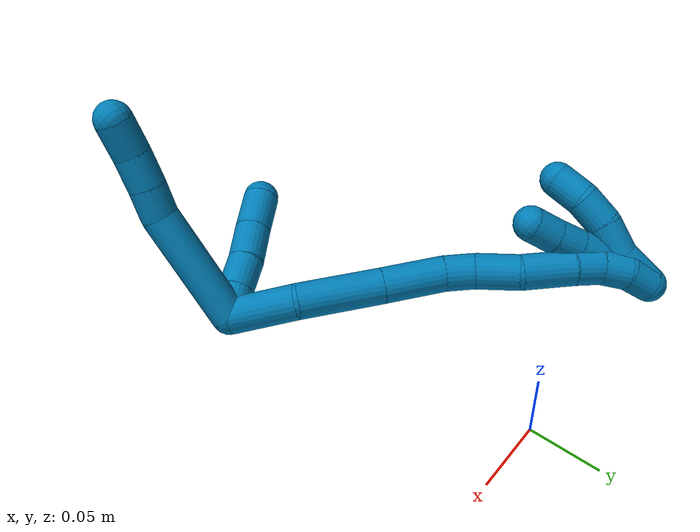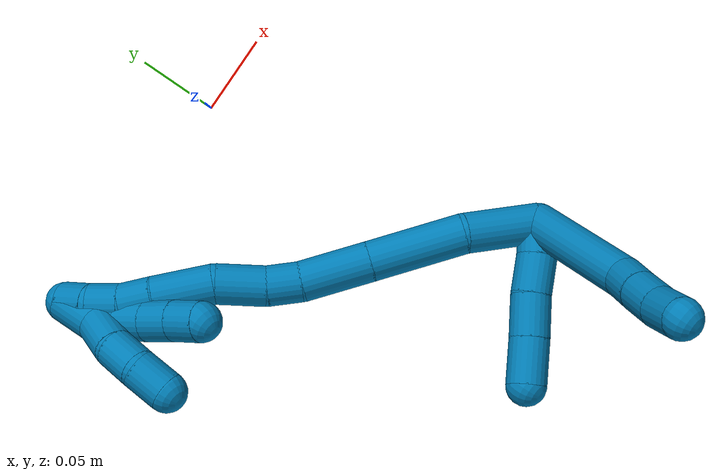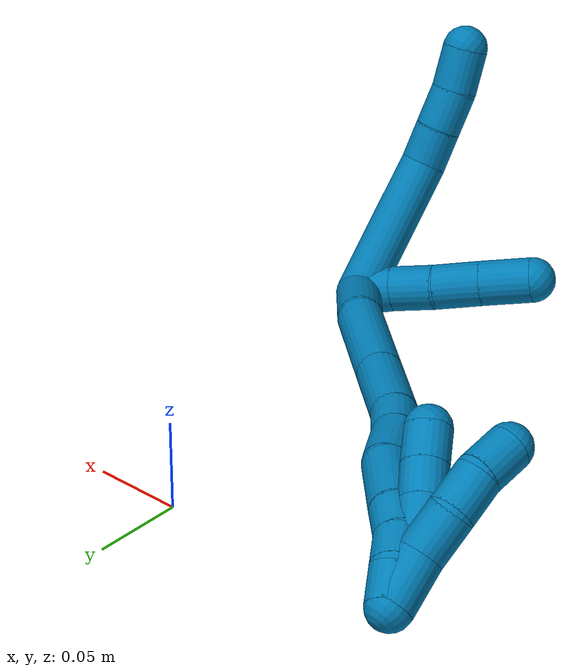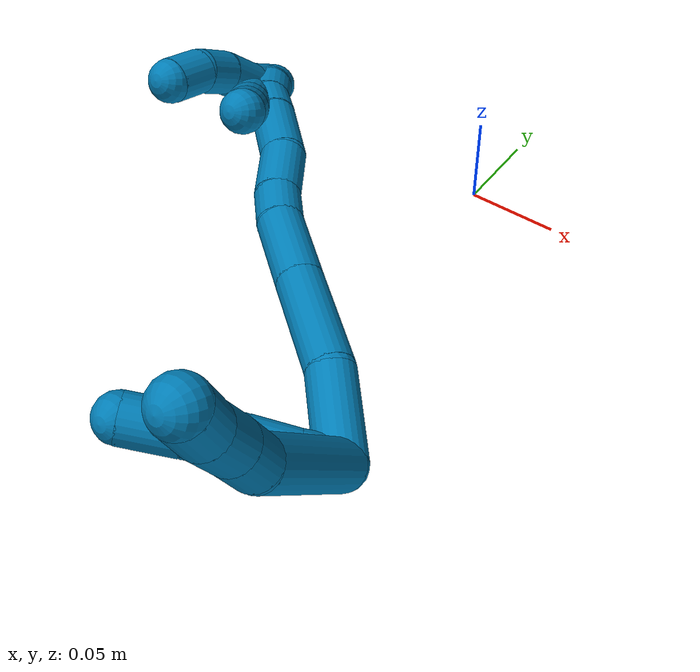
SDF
<sdf version="1.7">
 <world name="default">
  <model name="9">
   <static>0</static>
   <link name="9">
    <collision name="collision-cylinder-e_1_2_8">
     <pose>0.012779 0.006189 0.038067 -0.161163 0.319973 -0.026061</pose>
     <geometry><cylinder><radius>0.0125</radius><length>0.081258</length></cylinder></geometry>
     <surface>
      <friction><ode><mu>1.16</mu><mu2>1.16</mu2><slip1>0</slip1><slip2>0</slip2></ode></friction>
      <contact><ode><kp>1e+06</kp><kd>1</kd><max_vel>0</max_vel><min_depth>0.001</min_depth></ode></contact>
     </surface>
    </collision>
    <visual name="visual-cylinder-e_1_2_8">
     <pose>0.012779 0.006189 0.038067 -0.161163 0.319973 -0.026061</pose>
     <geometry><cylinder><radius>0.0125</radius><length>0.081258</length></cylinder></geometry>
     <material><ambient>0 0.490196 0.709804 1</ambient></material>
    </visual>
    <collision name="collision-cylinder-e_2_8_9">
     <pose>0.030576 0.01617 0.084862 -0.409879 0.485183 -0.102784</pose>
     <geometry><cylinder><radius>0.0125</radius><length>0.021516</length></cylinder></geometry>
     <surface>
      <friction><ode><mu>1.16</mu><mu2>1.16</mu2><slip1>0</slip1><slip2>0</slip2></ode></friction>
      <contact><ode><kp>1e+06</kp><kd>1</kd><max_vel>0</max_vel><min_depth>0.001</min_depth></ode></contact>
     </surface>
    </collision>
    <visual name="visual-cylinder-e_2_8_9">
     <pose>0.030576 0.01617 0.084862 -0.409879 0.485183 -0.102784</pose>
     <geometry><cylinder><radius>0.0125</radius><length>0.021516</length></cylinder></geometry>
     <material><ambient>0 0.490196 0.709804 1</ambient></material>
    </visual>
    <collision name="collision-cylinder-e_3_9_10">
     <pose>0.040757 0.023559 0.103232 -0.357108 0.465082 -0.085431</pose>
     <geometry><cylinder><radius>0.0125</radius><length>0.023028</length></cylinder></geometry>
     <surface>
      <friction><ode><mu>1.16</mu><mu2>1.16</mu2><slip1>0</slip1><slip2>0</slip2></ode></friction>
      <contact><ode><kp>1e+06</kp><kd>1</kd><max_vel>0</max_vel><min_depth>0.001</min_depth></ode></contact>
     </surface>
    </collision>
    <visual name="visual-cylinder-e_3_9_10">
     <pose>0.040757 0.023559 0.103232 -0.357108 0.465082 -0.085431</pose>
     <geometry><cylinder><radius>0.0125</radius><length>0.023028</length></cylinder></geometry>
     <material><ambient>0 0.490196 0.709804 1</ambient></material>
    </visual>
    <collision name="collision-cylinder-e_4_10_6">
     <pose>0.052747 0.030314 0.122351 -0.321627 0.599441 -0.100174</pose>
     <geometry><cylinder><radius>0.0125</radius><length>0.024198</length></cylinder></geometry>
     <surface>
      <friction><ode><mu>1.16</mu><mu2>1.16</mu2><slip1>0</slip1><slip2>0</slip2></ode></friction>
      <contact><ode><kp>1e+06</kp><kd>1</kd><max_vel>0</max_vel><min_depth>0.001</min_depth></ode></contact>
     </surface>
    </collision>
    <visual name="visual-cylinder-e_4_10_6">
     <pose>0.052747 0.030314 0.122351 -0.321627 0.599441 -0.100174</pose>
     <geometry><cylinder><radius>0.0125</radius><length>0.024198</length></cylinder></geometry>
     <material><ambient>0 0.490196 0.709804 1</ambient></material>
    </visual>
    <collision name="collision-cylinder-e_1_2_11">
     <pose>-0.004354 0.00713 0.005922 -0.877739 -0.439135 0.208746</pose>
     <geometry><cylinder><radius>0.0125</radius><length>0.02048</length></cylinder></geometry>
     <surface>
      <friction><ode><mu>1.16</mu><mu2>1.16</mu2><slip1>0</slip1><slip2>0</slip2></ode></friction>
      <contact><ode><kp>1e+06</kp><kd>1</kd><max_vel>0</max_vel><min_depth>0.001</min_depth></ode></contact>
     </surface>
    </collision>
    <visual name="visual-cylinder-e_1_2_11">
     <pose>-0.004354 0.00713 0.005922 -0.877739 -0.439135 0.208746</pose>
     <geometry><cylinder><radius>0.0125</radius><length>0.02048</length></cylinder></geometry>
     <material><ambient>0 0.490196 0.709804 1</ambient></material>
    </visual>
    <collision name="collision-cylinder-e_2_11_12">
     <pose>-0.014008 0.023441 0.017727 -1.00086 -0.45249 0.250443</pose>
     <geometry><cylinder><radius>0.0125</radius><length>0.024248</length></cylinder></geometry>
     <surface>
      <friction><ode><mu>1.16</mu><mu2>1.16</mu2><slip1>0</slip1><slip2>0</slip2></ode></friction>
      <contact><ode><kp>1e+06</kp><kd>1</kd><max_vel>0</max_vel><min_depth>0.001</min_depth></ode></contact>
     </surface>
    </collision>
    <visual name="visual-cylinder-e_2_11_12">
     <pose>-0.014008 0.023441 0.017727 -1.00086 -0.45249 0.250443</pose>
     <geometry><cylinder><radius>0.0125</radius><length>0.024248</length></cylinder></geometry>
     <material><ambient>0 0.490196 0.709804 1</ambient></material>
    </visual>
    <collision name="collision-cylinder-e_3_12_13">
     <pose>-0.02543 0.04165 0.031144 -0.875438 -0.479973 0.228046</pose>
     <geometry><cylinder><radius>0.0125</radius><length>0.026515</length></cylinder></geometry>
     <surface>
      <friction><ode><mu>1.16</mu><mu2>1.16</mu2><slip1>0</slip1><slip2>0</slip2></ode></friction>
      <contact><ode><kp>1e+06</kp><kd>1</kd><max_vel>0</max_vel><min_depth>0.001</min_depth></ode></contact>
     </surface>
    </collision>
    <visual name="visual-cylinder-e_3_12_13">
     <pose>-0.02543 0.04165 0.031144 -0.875438 -0.479973 0.228046</pose>
     <geometry><cylinder><radius>0.0125</radius><length>0.026515</length></cylinder></geometry>
     <material><ambient>0 0.490196 0.709804 1</ambient></material>
    </visual>
    <collision name="collision-cylinder-e_4_13_5">
     <pose>-0.038101 0.060805 0.046508 -0.912556 -0.472929 0.235455</pose>
     <geometry><cylinder><radius>0.0125</radius><length>0.028757</length></cylinder></geometry>
     <surface>
      <friction><ode><mu>1.16</mu><mu2>1.16</mu2><slip1>0</slip1><slip2>0</slip2></ode></friction>
      <contact><ode><kp>1e+06</kp><kd>1</kd><max_vel>0</max_vel><min_depth>0.001</min_depth></ode></contact>
     </surface>
    </collision>
    <visual name="visual-cylinder-e_4_13_5">
     <pose>-0.038101 0.060805 0.046508 -0.912556 -0.472929 0.235455</pose>
     <geometry><cylinder><radius>0.0125</radius><length>0.028757</length></cylinder></geometry>
     <material><ambient>0 0.490196 0.709804 1</ambient></material>
    </visual>
    <collision name="collision-cylinder-e_1_2_14">
     <pose>0.003537 0.020068 -0.01196 -2.10826 0.15028 -0.263474</pose>
     <geometry><cylinder><radius>0.0125</radius><length>0.047255</length></cylinder></geometry>
     <surface>
      <friction><ode><mu>1.16</mu><mu2>1.16</mu2><slip1>0</slip1><slip2>0</slip2></ode></friction>
      <contact><ode><kp>1e+06</kp><kd>1</kd><max_vel>0</max_vel><min_depth>0.001</min_depth></ode></contact>
     </surface>
    </collision>
    <visual name="visual-cylinder-e_1_2_14">
     <pose>0.003537 0.020068 -0.01196 -2.10826 0.15028 -0.263474</pose>
     <geometry><cylinder><radius>0.0125</radius><length>0.047255</length></cylinder></geometry>
     <material><ambient>0 0.490196 0.709804 1</ambient></material>
    </visual>
    <collision name="collision-cylinder-e_2_14_15">
     <pose>0.003734 0.06514 -0.039338 -2.12334 -0.113228 0.202364</pose>
     <geometry><cylinder><radius>0.0125</radius><length>0.059132</length></cylinder></geometry>
     <surface>
      <friction><ode><mu>1.16</mu><mu2>1.16</mu2><slip1>0</slip1><slip2>0</slip2></ode></friction>
      <contact><ode><kp>1e+06</kp><kd>1</kd><max_vel>0</max_vel><min_depth>0.001</min_depth></ode></contact>
     </surface>
    </collision>
    <visual name="visual-cylinder-e_2_14_15">
     <pose>0.003734 0.06514 -0.039338 -2.12334 -0.113228 0.202364</pose>
     <geometry><cylinder><radius>0.0125</radius><length>0.059132</length></cylinder></geometry>
     <material><ambient>0 0.490196 0.709804 1</ambient></material>
    </visual>
    <collision name="collision-cylinder-e_3_15_16">
     <pose>-0.001636 0.108657 -0.065905 -2.11287 -0.093631 0.165432</pose>
     <geometry><cylinder><radius>0.0125</radius><length>0.043408</length></cylinder></geometry>
     <surface>
      <friction><ode><mu>1.16</mu><mu2>1.16</mu2><slip1>0</slip1><slip2>0</slip2></ode></friction>
      <contact><ode><kp>1e+06</kp><kd>1</kd><max_vel>0</max_vel><min_depth>0.001</min_depth></ode></contact>
     </surface>
    </collision>
    <visual name="visual-cylinder-e_3_15_16">
     <pose>-0.001636 0.108657 -0.065905 -2.11287 -0.093631 0.165432</pose>
     <geometry><cylinder><radius>0.0125</radius><length>0.043408</length></cylinder></geometry>
     <material><ambient>0 0.490196 0.709804 1</ambient></material>
    </visual>
    <collision name="collision-cylinder-e_4_16_17">
     <pose>-0.003599 0.135461 -0.083539 -2.23448 0.006241 -0.012804</pose>
     <geometry><cylinder><radius>0.0125</radius><length>0.021057</length></cylinder></geometry>
     <surface>
      <friction><ode><mu>1.16</mu><mu2>1.16</mu2><slip1>0</slip1><slip2>0</slip2></ode></friction>
      <contact><ode><kp>1e+06</kp><kd>1</kd><max_vel>0</max_vel><min_depth>0.001</min_depth></ode></contact>
     </surface>
    </collision>
    <visual name="visual-cylinder-e_4_16_17">
     <pose>-0.003599 0.135461 -0.083539 -2.23448 0.006241 -0.012804</pose>
     <geometry><cylinder><radius>0.0125</radius><length>0.021057</length></cylinder></geometry>
     <material><ambient>0 0.490196 0.709804 1</ambient></material>
    </visual>
    <collision name="collision-cylinder-e_5_17_18">
     <pose>-0.001494 0.154641 -0.100913 -2.35631 0.131716 -0.31585</pose>
     <geometry><cylinder><radius>0.0125</radius><length>0.031062</length></cylinder></geometry>
     <surface>
      <friction><ode><mu>1.16</mu><mu2>1.16</mu2><slip1>0</slip1><slip2>0</slip2></ode></friction>
      <contact><ode><kp>1e+06</kp><kd>1</kd><max_vel>0</max_vel><min_depth>0.001</min_depth></ode></contact>
     </surface>
    </collision>
    <visual name="visual-cylinder-e_5_17_18">
     <pose>-0.001494 0.154641 -0.100913 -2.35631 0.131716 -0.31585</pose>
     <geometry><cylinder><radius>0.0125</radius><length>0.031062</length></cylinder></geometry>
     <material><ambient>0 0.490196 0.709804 1</ambient></material>
    </visual>
    <collision name="collision-cylinder-e_6_18_19">
     <pose>-0.001304 0.180482 -0.123171 -2.22079 -0.098171 0.197463</pose>
     <geometry><cylinder><radius>0.0125</radius><length>0.037756</length></cylinder></geometry>
     <surface>
      <friction><ode><mu>1.16</mu><mu2>1.16</mu2><slip1>0</slip1><slip2>0</slip2></ode></friction>
      <contact><ode><kp>1e+06</kp><kd>1</kd><max_vel>0</max_vel><min_depth>0.001</min_depth></ode></contact>
     </surface>
    </collision>
    <visual name="visual-cylinder-e_6_18_19">
     <pose>-0.001304 0.180482 -0.123171 -2.22079 -0.098171 0.197463</pose>
     <geometry><cylinder><radius>0.0125</radius><length>0.037756</length></cylinder></geometry>
     <material><ambient>0 0.490196 0.709804 1</ambient></material>
    </visual>
    <collision name="collision-cylinder-e_7_19_20">
     <pose>-0.004998 0.203131 -0.140847 -2.25752 -0.183258 0.383535</pose>
     <geometry><cylinder><radius>0.0125</radius><length>0.020233</length></cylinder></geometry>
     <surface>
      <friction><ode><mu>1.16</mu><mu2>1.16</mu2><slip1>0</slip1><slip2>0</slip2></ode></friction>
      <contact><ode><kp>1e+06</kp><kd>1</kd><max_vel>0</max_vel><min_depth>0.001</min_depth></ode></contact>
     </surface>
    </collision>
    <visual name="visual-cylinder-e_7_19_20">
     <pose>-0.004998 0.203131 -0.140847 -2.25752 -0.183258 0.383535</pose>
     <geometry><cylinder><radius>0.0125</radius><length>0.020233</length></cylinder></geometry>
     <material><ambient>0 0.490196 0.709804 1</ambient></material>
    </visual>
    <collision name="collision-cylinder-e_8_20_21">
     <pose>-0.008125 0.216795 -0.155081 -2.49594 -0.128588 0.38027</pose>
     <geometry><cylinder><radius>0.0125</radius><length>0.020015</length></cylinder></geometry>
     <surface>
      <friction><ode><mu>1.16</mu><mu2>1.16</mu2><slip1>0</slip1><slip2>0</slip2></ode></friction>
      <contact><ode><kp>1e+06</kp><kd>1</kd><max_vel>0</max_vel><min_depth>0.001</min_depth></ode></contact>
     </surface>
    </collision>
    <visual name="visual-cylinder-e_8_20_21">
     <pose>-0.008125 0.216795 -0.155081 -2.49594 -0.128588 0.38027</pose>
     <geometry><cylinder><radius>0.0125</radius><length>0.020015</length></cylinder></geometry>
     <material><ambient>0 0.490196 0.709804 1</ambient></material>
    </visual>
    <collision name="collision-cylinder-e_9_21_1">
     <pose>-0.012935 0.226392 -0.171682 -2.74578 -0.358879 1.47065</pose>
     <geometry><cylinder><radius>0.0125</radius><length>0.020081</length></cylinder></geometry>
     <surface>
      <friction><ode><mu>1.16</mu><mu2>1.16</mu2><slip1>0</slip1><slip2>0</slip2></ode></friction>
      <contact><ode><kp>1e+06</kp><kd>1</kd><max_vel>0</max_vel><min_depth>0.001</min_depth></ode></contact>
     </surface>
    </collision>
    <visual name="visual-cylinder-e_9_21_1">
     <pose>-0.012935 0.226392 -0.171682 -2.74578 -0.358879 1.47065</pose>
     <geometry><cylinder><radius>0.0125</radius><length>0.020081</length></cylinder></geometry>
     <material><ambient>0 0.490196 0.709804 1</ambient></material>
    </visual>
    <collision name="collision-cylinder-e_1_1_22">
     <pose>-0.014703 0.229094 -0.165834 0.063473 0.12024 0.003822</pose>
     <geometry><cylinder><radius>0.0125</radius><length>0.029316</length></cylinder></geometry>
     <surface>
      <friction><ode><mu>1.16</mu><mu2>1.16</mu2><slip1>0</slip1><slip2>0</slip2></ode></friction>
      <contact><ode><kp>1e+06</kp><kd>1</kd><max_vel>0</max_vel><min_depth>0.001</min_depth></ode></contact>
     </surface>
    </collision>
    <visual name="visual-cylinder-e_1_1_22">
     <pose>-0.014703 0.229094 -0.165834 0.063473 0.12024 0.003822</pose>
     <geometry><cylinder><radius>0.0125</radius><length>0.029316</length></cylinder></geometry>
     <material><ambient>0 0.490196 0.709804 1</ambient></material>
    </visual>
    <collision name="collision-cylinder-e_2_22_23">
     <pose>-0.010858 0.231164 -0.139163 -0.241599 0.165257 -0.020106</pose>
     <geometry><cylinder><radius>0.0125</radius><length>0.025368</length></cylinder></geometry>
     <surface>
      <friction><ode><mu>1.16</mu><mu2>1.16</mu2><slip1>0</slip1><slip2>0</slip2></ode></friction>
      <contact><ode><kp>1e+06</kp><kd>1</kd><max_vel>0</max_vel><min_depth>0.001</min_depth></ode></contact>
     </surface>
    </collision>
    <visual name="visual-cylinder-e_2_22_23">
     <pose>-0.010858 0.231164 -0.139163 -0.241599 0.165257 -0.020106</pose>
     <geometry><cylinder><radius>0.0125</radius><length>0.025368</length></cylinder></geometry>
     <material><ambient>0 0.490196 0.709804 1</ambient></material>
    </visual>
    <collision name="collision-cylinder-e_3_23_24">
     <pose>-0.008098 0.234392 -0.115641 -0.020661 0.059135 -0.000611</pose>
     <geometry><cylinder><radius>0.0125</radius><length>0.022794</length></cylinder></geometry>
     <surface>
      <friction><ode><mu>1.16</mu><mu2>1.16</mu2><slip1>0</slip1><slip2>0</slip2></ode></friction>
      <contact><ode><kp>1e+06</kp><kd>1</kd><max_vel>0</max_vel><min_depth>0.001</min_depth></ode></contact>
     </surface>
    </collision>
    <visual name="visual-cylinder-e_3_23_24">
     <pose>-0.008098 0.234392 -0.115641 -0.020661 0.059135 -0.000611</pose>
     <geometry><cylinder><radius>0.0125</radius><length>0.022794</length></cylinder></geometry>
     <material><ambient>0 0.490196 0.709804 1</ambient></material>
    </visual>
    <collision name="collision-cylinder-e_4_24_4">
     <pose>-0.009821 0.233467 -0.093324 0.105619 -0.214413 -0.011377</pose>
     <geometry><cylinder><radius>0.0125</radius><length>0.022522</length></cylinder></geometry>
     <surface>
      <friction><ode><mu>1.16</mu><mu2>1.16</mu2><slip1>0</slip1><slip2>0</slip2></ode></friction>
      <contact><ode><kp>1e+06</kp><kd>1</kd><max_vel>0</max_vel><min_depth>0.001</min_depth></ode></contact>
     </surface>
    </collision>
    <visual name="visual-cylinder-e_4_24_4">
     <pose>-0.009821 0.233467 -0.093324 0.105619 -0.214413 -0.011377</pose>
     <geometry><cylinder><radius>0.0125</radius><length>0.022522</length></cylinder></geometry>
     <material><ambient>0 0.490196 0.709804 1</ambient></material>
    </visual>
    <collision name="collision-cylinder-e_1_1_25">
     <pose>-0.015172 0.227143 -0.170865 0.29395 0.129277 0.019165</pose>
     <geometry><cylinder><radius>0.0125</radius><length>0.02</length></cylinder></geometry>
     <surface>
      <friction><ode><mu>1.16</mu><mu2>1.16</mu2><slip1>0</slip1><slip2>0</slip2></ode></friction>
      <contact><ode><kp>1e+06</kp><kd>1</kd><max_vel>0</max_vel><min_depth>0.001</min_depth></ode></contact>
     </surface>
    </collision>
    <visual name="visual-cylinder-e_1_1_25">
     <pose>-0.015172 0.227143 -0.170865 0.29395 0.129277 0.019165</pose>
     <geometry><cylinder><radius>0.0125</radius><length>0.02</length></cylinder></geometry>
     <material><ambient>0 0.490196 0.709804 1</ambient></material>
    </visual>
    <collision name="collision-cylinder-e_2_25_26">
     <pose>-0.013379 0.220825 -0.152 0.352194 0.050368 0.008964</pose>
     <geometry><cylinder><radius>0.0125</radius><length>0.02</length></cylinder></geometry>
     <surface>
      <friction><ode><mu>1.16</mu><mu2>1.16</mu2><slip1>0</slip1><slip2>0</slip2></ode></friction>
      <contact><ode><kp>1e+06</kp><kd>1</kd><max_vel>0</max_vel><min_depth>0.001</min_depth></ode></contact>
     </surface>
    </collision>
    <visual name="visual-cylinder-e_2_25_26">
     <pose>-0.013379 0.220825 -0.152 0.352194 0.050368 0.008964</pose>
     <geometry><cylinder><radius>0.0125</radius><length>0.02</length></cylinder></geometry>
     <material><ambient>0 0.490196 0.709804 1</ambient></material>
    </visual>
    <collision name="collision-cylinder-e_3_26_27">
     <pose>-0.009744 0.21301 -0.134194 0.47814 0.318572 0.07827</pose>
     <geometry><cylinder><radius>0.0125</radius><length>0.02</length></cylinder></geometry>
     <surface>
      <friction><ode><mu>1.16</mu><mu2>1.16</mu2><slip1>0</slip1><slip2>0</slip2></ode></friction>
      <contact><ode><kp>1e+06</kp><kd>1</kd><max_vel>0</max_vel><min_depth>0.001</min_depth></ode></contact>
     </surface>
    </collision>
    <visual name="visual-cylinder-e_3_26_27">
     <pose>-0.009744 0.21301 -0.134194 0.47814 0.318572 0.07827</pose>
     <geometry><cylinder><radius>0.0125</radius><length>0.02</length></cylinder></geometry>
     <material><ambient>0 0.490196 0.709804 1</ambient></material>
    </visual>
    <collision name="collision-cylinder-e_4_27_28">
     <pose>-0.002978 0.204374 -0.11748 0.475656 0.371943 0.091156</pose>
     <geometry><cylinder><radius>0.0125</radius><length>0.02</length></cylinder></geometry>
     <surface>
      <friction><ode><mu>1.16</mu><mu2>1.16</mu2><slip1>0</slip1><slip2>0</slip2></ode></friction>
      <contact><ode><kp>1e+06</kp><kd>1</kd><max_vel>0</max_vel><min_depth>0.001</min_depth></ode></contact>
     </surface>
    </collision>
    <visual name="visual-cylinder-e_4_27_28">
     <pose>-0.002978 0.204374 -0.11748 0.475656 0.371943 0.091156</pose>
     <geometry><cylinder><radius>0.0125</radius><length>0.02</length></cylinder></geometry>
     <material><ambient>0 0.490196 0.709804 1</ambient></material>
    </visual>
    <collision name="collision-cylinder-e_5_28_3">
     <pose>0.004283 0.196305 -0.10069 0.420349 0.371065 0.080036</pose>
     <geometry><cylinder><radius>0.0125</radius><length>0.02</length></cylinder></geometry>
     <surface>
      <friction><ode><mu>1.16</mu><mu2>1.16</mu2><slip1>0</slip1><slip2>0</slip2></ode></friction>
      <contact><ode><kp>1e+06</kp><kd>1</kd><max_vel>0</max_vel><min_depth>0.001</min_depth></ode></contact>
     </surface>
    </collision>
    <visual name="visual-cylinder-e_5_28_3">
     <pose>0.004283 0.196305 -0.10069 0.420349 0.371065 0.080036</pose>
     <geometry><cylinder><radius>0.0125</radius><length>0.02</length></cylinder></geometry>
     <material><ambient>0 0.490196 0.709804 1</ambient></material>
    </visual>
    <collision name="collision-sphere-3">
     <pose>0.007909 0.192502 -0.092181 0 -0 0</pose>
     <geometry><sphere><radius>0.0125</radius></sphere></geometry>
     <surface>
      <friction><ode><mu>1.16</mu><mu2>1.16</mu2><slip1>0</slip1><slip2>0</slip2></ode></friction>
      <contact><ode><kp>1e+06</kp><kd>1</kd><max_vel>0</max_vel><min_depth>0.001</min_depth></ode></contact>
     </surface>
    </collision>
    <visual name="visual-sphere-3">
     <pose>0.007909 0.192502 -0.092181 0 -0 0</pose>
     <geometry><sphere><radius>0.0125</radius></sphere></geometry>
     <material><ambient>0 0.490196 0.709804 1</ambient></material>
    </visual>
    <collision name="collision-sphere-28">
     <pose>0.000657 0.200108 -0.109198 0 -0 0</pose>
     <geometry><sphere><radius>0.0125</radius></sphere></geometry>
     <surface>
      <friction><ode><mu>1.16</mu><mu2>1.16</mu2><slip1>0</slip1><slip2>0</slip2></ode></friction>
      <contact><ode><kp>1e+06</kp><kd>1</kd><max_vel>0</max_vel><min_depth>0.001</min_depth></ode></contact>
     </surface>
    </collision>
    <visual name="visual-sphere-28">
     <pose>0.000657 0.200108 -0.109198 0 -0 0</pose>
     <geometry><sphere><radius>0.0125</radius></sphere></geometry>
     <material><ambient>0 0.490196 0.709804 1</ambient></material>
    </visual>
    <collision name="collision-sphere-27">
     <pose>-0.006612 0.20864 -0.125762 0 -0 0</pose>
     <geometry><sphere><radius>0.0125</radius></sphere></geometry>
     <surface>
      <friction><ode><mu>1.16</mu><mu2>1.16</mu2><slip1>0</slip1><slip2>0</slip2></ode></friction>
      <contact><ode><kp>1e+06</kp><kd>1</kd><max_vel>0</max_vel><min_depth>0.001</min_depth></ode></contact>
     </surface>
    </collision>
    <visual name="visual-sphere-27">
     <pose>-0.006612 0.20864 -0.125762 0 -0 0</pose>
     <geometry><sphere><radius>0.0125</radius></sphere></geometry>
     <material><ambient>0 0.490196 0.709804 1</ambient></material>
    </visual>
    <collision name="collision-sphere-26">
     <pose>-0.012876 0.21738 -0.142625 0 -0 0</pose>
     <geometry><sphere><radius>0.0125</radius></sphere></geometry>
     <surface>
      <friction><ode><mu>1.16</mu><mu2>1.16</mu2><slip1>0</slip1><slip2>0</slip2></ode></friction>
      <contact><ode><kp>1e+06</kp><kd>1</kd><max_vel>0</max_vel><min_depth>0.001</min_depth></ode></contact>
     </surface>
    </collision>
    <visual name="visual-sphere-26">
     <pose>-0.012876 0.21738 -0.142625 0 -0 0</pose>
     <geometry><sphere><radius>0.0125</radius></sphere></geometry>
     <material><ambient>0 0.490196 0.709804 1</ambient></material>
    </visual>
    <collision name="collision-sphere-25">
     <pose>-0.013883 0.22427 -0.161374 0 -0 0</pose>
     <geometry><sphere><radius>0.0125</radius></sphere></geometry>
     <surface>
      <friction><ode><mu>1.16</mu><mu2>1.16</mu2><slip1>0</slip1><slip2>0</slip2></ode></friction>
      <contact><ode><kp>1e+06</kp><kd>1</kd><max_vel>0</max_vel><min_depth>0.001</min_depth></ode></contact>
     </surface>
    </collision>
    <visual name="visual-sphere-25">
     <pose>-0.013883 0.22427 -0.161374 0 -0 0</pose>
     <geometry><sphere><radius>0.0125</radius></sphere></geometry>
     <material><ambient>0 0.490196 0.709804 1</ambient></material>
    </visual>
    <collision name="collision-sphere-4">
     <pose>-0.012217 0.232307 -0.082382 0 -0 0</pose>
     <geometry><sphere><radius>0.0125</radius></sphere></geometry>
     <surface>
      <friction><ode><mu>1.16</mu><mu2>1.16</mu2><slip1>0</slip1><slip2>0</slip2></ode></friction>
      <contact><ode><kp>1e+06</kp><kd>1</kd><max_vel>0</max_vel><min_depth>0.001</min_depth></ode></contact>
     </surface>
    </collision>
    <visual name="visual-sphere-4">
     <pose>-0.012217 0.232307 -0.082382 0 -0 0</pose>
     <geometry><sphere><radius>0.0125</radius></sphere></geometry>
     <material><ambient>0 0.490196 0.709804 1</ambient></material>
    </visual>
    <collision name="collision-sphere-24">
     <pose>-0.007425 0.234627 -0.104266 0 -0 0</pose>
     <geometry><sphere><radius>0.0125</radius></sphere></geometry>
     <surface>
      <friction><ode><mu>1.16</mu><mu2>1.16</mu2><slip1>0</slip1><slip2>0</slip2></ode></friction>
      <contact><ode><kp>1e+06</kp><kd>1</kd><max_vel>0</max_vel><min_depth>0.001</min_depth></ode></contact>
     </surface>
    </collision>
    <visual name="visual-sphere-24">
     <pose>-0.007425 0.234627 -0.104266 0 -0 0</pose>
     <geometry><sphere><radius>0.0125</radius></sphere></geometry>
     <material><ambient>0 0.490196 0.709804 1</ambient></material>
    </visual>
    <collision name="collision-sphere-23">
     <pose>-0.008772 0.234157 -0.127015 0 -0 0</pose>
     <geometry><sphere><radius>0.0125</radius></sphere></geometry>
     <surface>
      <friction><ode><mu>1.16</mu><mu2>1.16</mu2><slip1>0</slip1><slip2>0</slip2></ode></friction>
      <contact><ode><kp>1e+06</kp><kd>1</kd><max_vel>0</max_vel><min_depth>0.001</min_depth></ode></contact>
     </surface>
    </collision>
    <visual name="visual-sphere-23">
     <pose>-0.008772 0.234157 -0.127015 0 -0 0</pose>
     <geometry><sphere><radius>0.0125</radius></sphere></geometry>
     <material><ambient>0 0.490196 0.709804 1</ambient></material>
    </visual>
    <collision name="collision-sphere-22">
     <pose>-0.012945 0.228171 -0.151311 0 -0 0</pose>
     <geometry><sphere><radius>0.0125</radius></sphere></geometry>
     <surface>
      <friction><ode><mu>1.16</mu><mu2>1.16</mu2><slip1>0</slip1><slip2>0</slip2></ode></friction>
      <contact><ode><kp>1e+06</kp><kd>1</kd><max_vel>0</max_vel><min_depth>0.001</min_depth></ode></contact>
     </surface>
    </collision>
    <visual name="visual-sphere-22">
     <pose>-0.012945 0.228171 -0.151311 0 -0 0</pose>
     <geometry><sphere><radius>0.0125</radius></sphere></geometry>
     <material><ambient>0 0.490196 0.709804 1</ambient></material>
    </visual>
    <collision name="collision-sphere-1">
     <pose>-0.016461 0.230017 -0.180356 0 -0 0</pose>
     <geometry><sphere><radius>0.0125</radius></sphere></geometry>
     <surface>
      <friction><ode><mu>1.16</mu><mu2>1.16</mu2><slip1>0</slip1><slip2>0</slip2></ode></friction>
      <contact><ode><kp>1e+06</kp><kd>1</kd><max_vel>0</max_vel><min_depth>0.001</min_depth></ode></contact>
     </surface>
    </collision>
    <visual name="visual-sphere-1">
     <pose>-0.016461 0.230017 -0.180356 0 -0 0</pose>
     <geometry><sphere><radius>0.0125</radius></sphere></geometry>
     <material><ambient>0 0.490196 0.709804 1</ambient></material>
    </visual>
    <collision name="collision-sphere-21">
     <pose>-0.009408 0.222767 -0.163008 0 -0 0</pose>
     <geometry><sphere><radius>0.0125</radius></sphere></geometry>
     <surface>
      <friction><ode><mu>1.16</mu><mu2>1.16</mu2><slip1>0</slip1><slip2>0</slip2></ode></friction>
      <contact><ode><kp>1e+06</kp><kd>1</kd><max_vel>0</max_vel><min_depth>0.001</min_depth></ode></contact>
     </surface>
    </collision>
    <visual name="visual-sphere-21">
     <pose>-0.009408 0.222767 -0.163008 0 -0 0</pose>
     <geometry><sphere><radius>0.0125</radius></sphere></geometry>
     <material><ambient>0 0.490196 0.709804 1</ambient></material>
    </visual>
    <collision name="collision-sphere-11">
     <pose>-0.008707 0.014261 0.011843 0 -0 0</pose>
     <geometry><sphere><radius>0.0125</radius></sphere></geometry>
     <surface>
      <friction><ode><mu>1.16</mu><mu2>1.16</mu2><slip1>0</slip1><slip2>0</slip2></ode></friction>
      <contact><ode><kp>1e+06</kp><kd>1</kd><max_vel>0</max_vel><min_depth>0.001</min_depth></ode></contact>
     </surface>
    </collision>
    <visual name="visual-sphere-11">
     <pose>-0.008707 0.014261 0.011843 0 -0 0</pose>
     <geometry><sphere><radius>0.0125</radius></sphere></geometry>
     <material><ambient>0 0.490196 0.709804 1</ambient></material>
    </visual>
    <collision name="collision-sphere-6">
     <pose>0.059573 0.033472 0.131829 0 -0 0</pose>
     <geometry><sphere><radius>0.0125</radius></sphere></geometry>
     <surface>
      <friction><ode><mu>1.16</mu><mu2>1.16</mu2><slip1>0</slip1><slip2>0</slip2></ode></friction>
      <contact><ode><kp>1e+06</kp><kd>1</kd><max_vel>0</max_vel><min_depth>0.001</min_depth></ode></contact>
     </surface>
    </collision>
    <visual name="visual-sphere-6">
     <pose>0.059573 0.033472 0.131829 0 -0 0</pose>
     <geometry><sphere><radius>0.0125</radius></sphere></geometry>
     <material><ambient>0 0.490196 0.709804 1</ambient></material>
    </visual>
    <collision name="collision-sphere-10">
     <pose>0.045921 0.027157 0.112874 0 -0 0</pose>
     <geometry><sphere><radius>0.0125</radius></sphere></geometry>
     <surface>
      <friction><ode><mu>1.16</mu><mu2>1.16</mu2><slip1>0</slip1><slip2>0</slip2></ode></friction>
      <contact><ode><kp>1e+06</kp><kd>1</kd><max_vel>0</max_vel><min_depth>0.001</min_depth></ode></contact>
     </surface>
    </collision>
    <visual name="visual-sphere-10">
     <pose>0.045921 0.027157 0.112874 0 -0 0</pose>
     <geometry><sphere><radius>0.0125</radius></sphere></geometry>
     <material><ambient>0 0.490196 0.709804 1</ambient></material>
    </visual>
    <collision name="collision-sphere-9">
     <pose>0.035593 0.019962 0.09359 0 -0 0</pose>
     <geometry><sphere><radius>0.0125</radius></sphere></geometry>
     <surface>
      <friction><ode><mu>1.16</mu><mu2>1.16</mu2><slip1>0</slip1><slip2>0</slip2></ode></friction>
      <contact><ode><kp>1e+06</kp><kd>1</kd><max_vel>0</max_vel><min_depth>0.001</min_depth></ode></contact>
     </surface>
    </collision>
    <visual name="visual-sphere-9">
     <pose>0.035593 0.019962 0.09359 0 -0 0</pose>
     <geometry><sphere><radius>0.0125</radius></sphere></geometry>
     <material><ambient>0 0.490196 0.709804 1</ambient></material>
    </visual>
    <collision name="collision-sphere-2">
     <geometry><sphere><radius>0.0125</radius></sphere></geometry>
     <surface>
      <friction><ode><mu>1.16</mu><mu2>1.16</mu2><slip1>0</slip1><slip2>0</slip2></ode></friction>
      <contact><ode><kp>1e+06</kp><kd>1</kd><max_vel>0</max_vel><min_depth>0.001</min_depth></ode></contact>
     </surface>
    </collision>
    <visual name="visual-sphere-2">
     <geometry><sphere><radius>0.0125</radius></sphere></geometry>
     <material><ambient>0 0.490196 0.709804 1</ambient></material>
    </visual>
    <collision name="collision-sphere-19">
     <pose>-0.003154 0.195438 -0.13454 0 -0 0</pose>
     <geometry><sphere><radius>0.0125</radius></sphere></geometry>
     <surface>
      <friction><ode><mu>1.16</mu><mu2>1.16</mu2><slip1>0</slip1><slip2>0</slip2></ode></friction>
      <contact><ode><kp>1e+06</kp><kd>1</kd><max_vel>0</max_vel><min_depth>0.001</min_depth></ode></contact>
     </surface>
    </collision>
    <visual name="visual-sphere-19">
     <pose>-0.003154 0.195438 -0.13454 0 -0 0</pose>
     <geometry><sphere><radius>0.0125</radius></sphere></geometry>
     <material><ambient>0 0.490196 0.709804 1</ambient></material>
    </visual>
    <collision name="collision-sphere-8">
     <pose>0.025559 0.012377 0.076134 0 -0 0</pose>
     <geometry><sphere><radius>0.0125</radius></sphere></geometry>
     <surface>
      <friction><ode><mu>1.16</mu><mu2>1.16</mu2><slip1>0</slip1><slip2>0</slip2></ode></friction>
      <contact><ode><kp>1e+06</kp><kd>1</kd><max_vel>0</max_vel><min_depth>0.001</min_depth></ode></contact>
     </surface>
    </collision>
    <visual name="visual-sphere-8">
     <pose>0.025559 0.012377 0.076134 0 -0 0</pose>
     <geometry><sphere><radius>0.0125</radius></sphere></geometry>
     <material><ambient>0 0.490196 0.709804 1</ambient></material>
    </visual>
    <collision name="collision-sphere-12">
     <pose>-0.019309 0.032621 0.02361 0 -0 0</pose>
     <geometry><sphere><radius>0.0125</radius></sphere></geometry>
     <surface>
      <friction><ode><mu>1.16</mu><mu2>1.16</mu2><slip1>0</slip1><slip2>0</slip2></ode></friction>
      <contact><ode><kp>1e+06</kp><kd>1</kd><max_vel>0</max_vel><min_depth>0.001</min_depth></ode></contact>
     </surface>
    </collision>
    <visual name="visual-sphere-12">
     <pose>-0.019309 0.032621 0.02361 0 -0 0</pose>
     <geometry><sphere><radius>0.0125</radius></sphere></geometry>
     <material><ambient>0 0.490196 0.709804 1</ambient></material>
    </visual>
    <collision name="collision-sphere-13">
     <pose>-0.031552 0.050679 0.038678 0 -0 0</pose>
     <geometry><sphere><radius>0.0125</radius></sphere></geometry>
     <surface>
      <friction><ode><mu>1.16</mu><mu2>1.16</mu2><slip1>0</slip1><slip2>0</slip2></ode></friction>
      <contact><ode><kp>1e+06</kp><kd>1</kd><max_vel>0</max_vel><min_depth>0.001</min_depth></ode></contact>
     </surface>
    </collision>
    <visual name="visual-sphere-13">
     <pose>-0.031552 0.050679 0.038678 0 -0 0</pose>
     <geometry><sphere><radius>0.0125</radius></sphere></geometry>
     <material><ambient>0 0.490196 0.709804 1</ambient></material>
    </visual>
    <collision name="collision-sphere-5">
     <pose>-0.044651 0.070931 0.054338 0 -0 0</pose>
     <geometry><sphere><radius>0.0125</radius></sphere></geometry>
     <surface>
      <friction><ode><mu>1.16</mu><mu2>1.16</mu2><slip1>0</slip1><slip2>0</slip2></ode></friction>
      <contact><ode><kp>1e+06</kp><kd>1</kd><max_vel>0</max_vel><min_depth>0.001</min_depth></ode></contact>
     </surface>
    </collision>
    <visual name="visual-sphere-5">
     <pose>-0.044651 0.070931 0.054338 0 -0 0</pose>
     <geometry><sphere><radius>0.0125</radius></sphere></geometry>
     <material><ambient>0 0.490196 0.709804 1</ambient></material>
    </visual>
    <collision name="collision-sphere-14">
     <pose>0.007075 0.040135 -0.02392 0 -0 0</pose>
     <geometry><sphere><radius>0.0125</radius></sphere></geometry>
     <surface>
      <friction><ode><mu>1.16</mu><mu2>1.16</mu2><slip1>0</slip1><slip2>0</slip2></ode></friction>
      <contact><ode><kp>1e+06</kp><kd>1</kd><max_vel>0</max_vel><min_depth>0.001</min_depth></ode></contact>
     </surface>
    </collision>
    <visual name="visual-sphere-14">
     <pose>0.007075 0.040135 -0.02392 0 -0 0</pose>
     <geometry><sphere><radius>0.0125</radius></sphere></geometry>
     <material><ambient>0 0.490196 0.709804 1</ambient></material>
    </visual>
    <collision name="collision-sphere-15">
     <pose>0.000394 0.090145 -0.054756 0 -0 0</pose>
     <geometry><sphere><radius>0.0125</radius></sphere></geometry>
     <surface>
      <friction><ode><mu>1.16</mu><mu2>1.16</mu2><slip1>0</slip1><slip2>0</slip2></ode></friction>
      <contact><ode><kp>1e+06</kp><kd>1</kd><max_vel>0</max_vel><min_depth>0.001</min_depth></ode></contact>
     </surface>
    </collision>
    <visual name="visual-sphere-15">
     <pose>0.000394 0.090145 -0.054756 0 -0 0</pose>
     <geometry><sphere><radius>0.0125</radius></sphere></geometry>
     <material><ambient>0 0.490196 0.709804 1</ambient></material>
    </visual>
    <collision name="collision-sphere-16">
     <pose>-0.003665 0.127168 -0.077053 0 -0 0</pose>
     <geometry><sphere><radius>0.0125</radius></sphere></geometry>
     <surface>
      <friction><ode><mu>1.16</mu><mu2>1.16</mu2><slip1>0</slip1><slip2>0</slip2></ode></friction>
      <contact><ode><kp>1e+06</kp><kd>1</kd><max_vel>0</max_vel><min_depth>0.001</min_depth></ode></contact>
     </surface>
    </collision>
    <visual name="visual-sphere-16">
     <pose>-0.003665 0.127168 -0.077053 0 -0 0</pose>
     <geometry><sphere><radius>0.0125</radius></sphere></geometry>
     <material><ambient>0 0.490196 0.709804 1</ambient></material>
    </visual>
    <collision name="collision-sphere-17">
     <pose>-0.003533 0.143755 -0.090025 0 -0 0</pose>
     <geometry><sphere><radius>0.0125</radius></sphere></geometry>
     <surface>
      <friction><ode><mu>1.16</mu><mu2>1.16</mu2><slip1>0</slip1><slip2>0</slip2></ode></friction>
      <contact><ode><kp>1e+06</kp><kd>1</kd><max_vel>0</max_vel><min_depth>0.001</min_depth></ode></contact>
     </surface>
    </collision>
    <visual name="visual-sphere-17">
     <pose>-0.003533 0.143755 -0.090025 0 -0 0</pose>
     <geometry><sphere><radius>0.0125</radius></sphere></geometry>
     <material><ambient>0 0.490196 0.709804 1</ambient></material>
    </visual>
    <collision name="collision-sphere-18">
     <pose>0.000546 0.165526 -0.111801 0 -0 0</pose>
     <geometry><sphere><radius>0.0125</radius></sphere></geometry>
     <surface>
      <friction><ode><mu>1.16</mu><mu2>1.16</mu2><slip1>0</slip1><slip2>0</slip2></ode></friction>
      <contact><ode><kp>1e+06</kp><kd>1</kd><max_vel>0</max_vel><min_depth>0.001</min_depth></ode></contact>
     </surface>
    </collision>
    <visual name="visual-sphere-18">
     <pose>0.000546 0.165526 -0.111801 0 -0 0</pose>
     <geometry><sphere><radius>0.0125</radius></sphere></geometry>
     <material><ambient>0 0.490196 0.709804 1</ambient></material>
    </visual>
    <collision name="collision-sphere-20">
     <pose>-0.006842 0.210823 -0.147154 0 -0 0</pose>
     <geometry><sphere><radius>0.0125</radius></sphere></geometry>
     <surface>
      <friction><ode><mu>1.16</mu><mu2>1.16</mu2><slip1>0</slip1><slip2>0</slip2></ode></friction>
      <contact><ode><kp>1e+06</kp><kd>1</kd><max_vel>0</max_vel><min_depth>0.001</min_depth></ode></contact>
     </surface>
    </collision>
    <visual name="visual-sphere-20">
     <pose>-0.006842 0.210823 -0.147154 0 -0 0</pose>
     <geometry><sphere><radius>0.0125</radius></sphere></geometry>
     <material><ambient>0 0.490196 0.709804 1</ambient></material>
    </visual>
    <inertial>
     <pose>-0.00069 0.116121 -0.051147 0 -0 0</pose>
     <mass>0.75</mass>
     <inertia>
      <ixx>0.000134</ixx>
      <ixy>0</ixy>
      <ixz>0</ixz>
      <iyy>7.7e-05</iyy>
      <iyz>0</iyz>
      <izz>-5.6e-05</izz>
     </inertia>
    </inertial>
   </link>
   <pose>0.054552 -0.205534 0.017184 0.703867 -0.89304 0.700049</pose>
  </model>
 </world>
</sdf>
